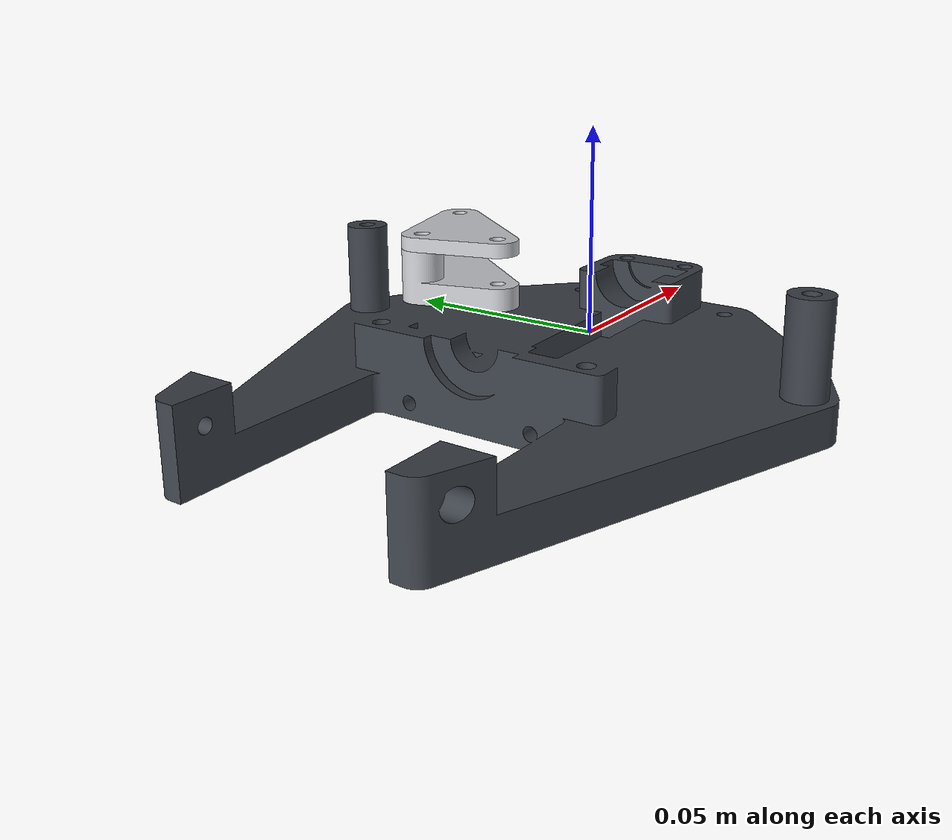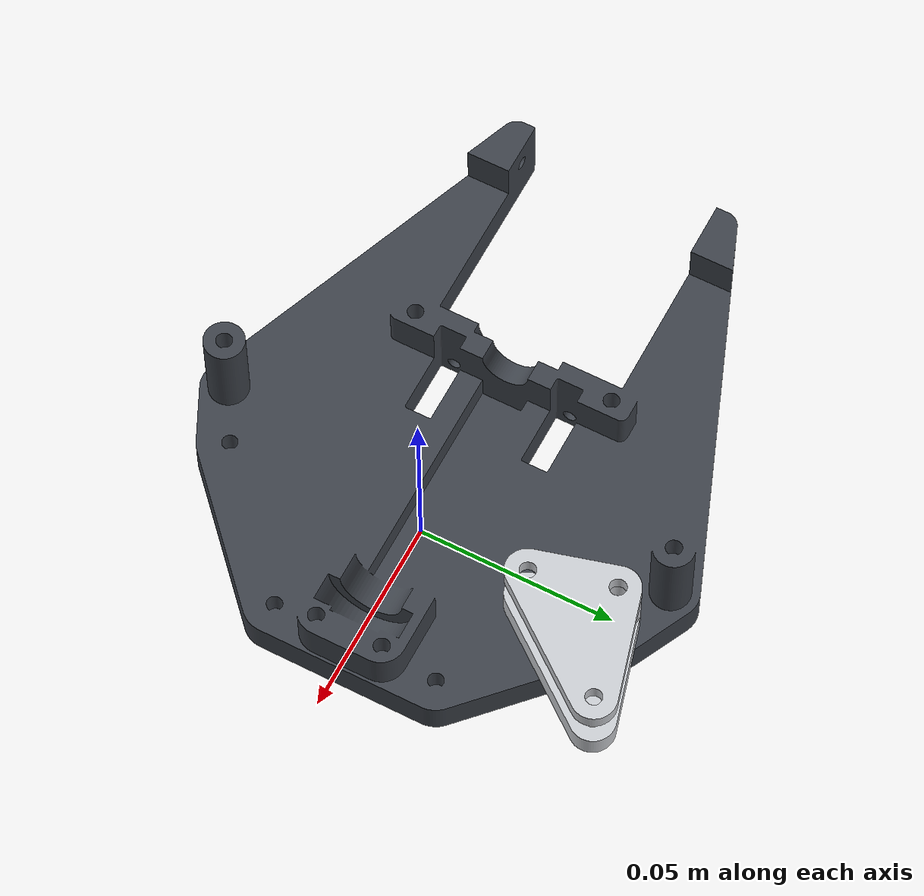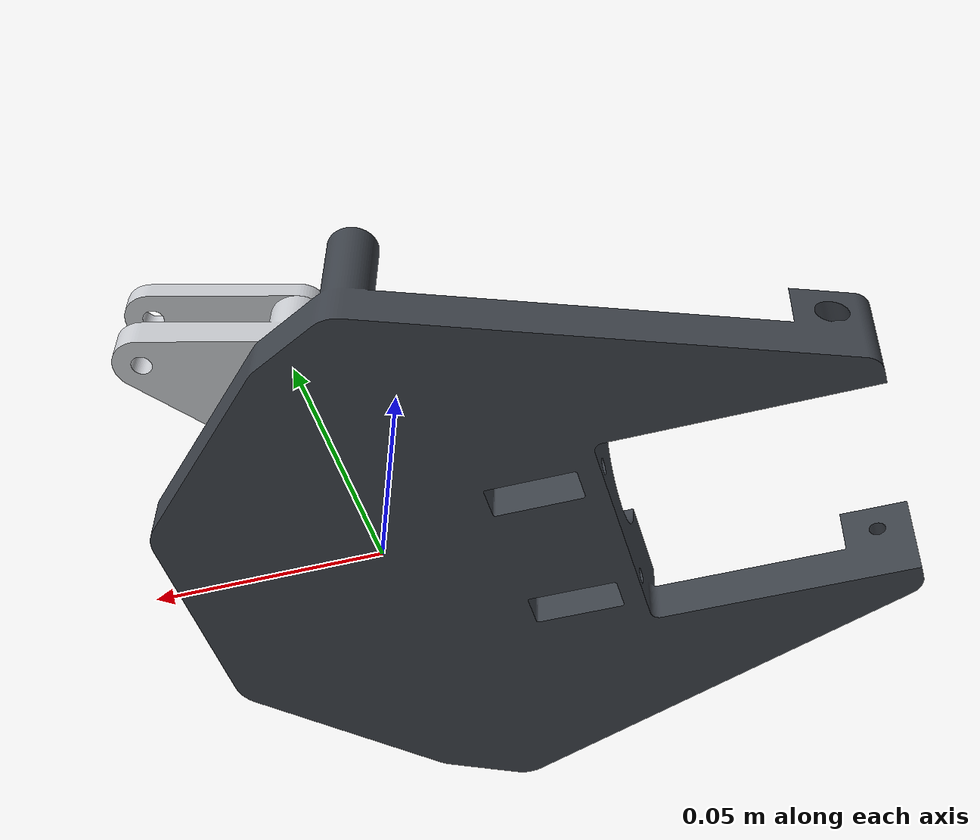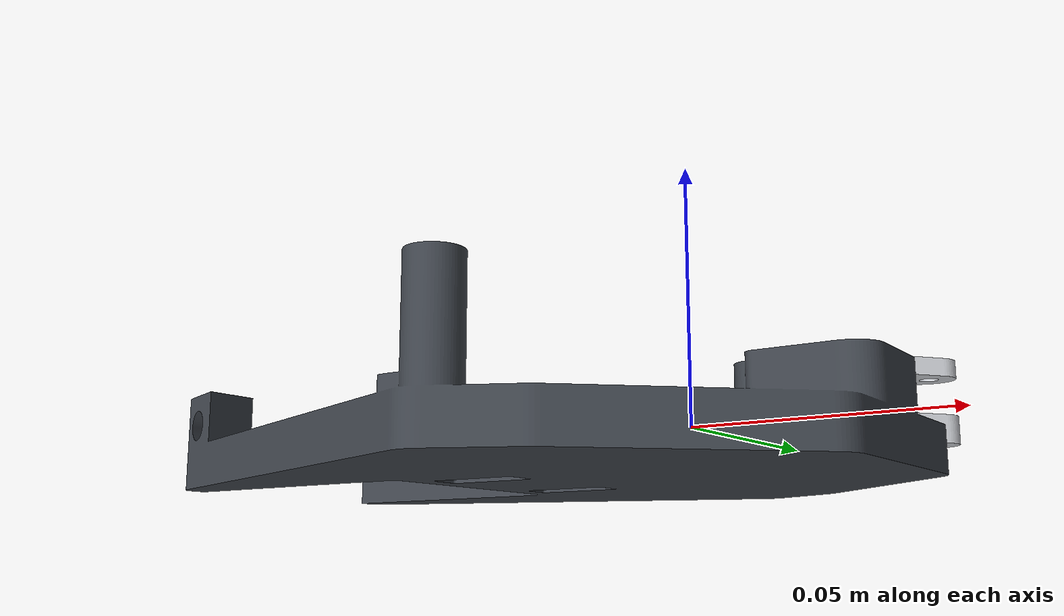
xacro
<?xml version="1.0"?>
<robot name="lead_screw_gripper" xmlns:xacro="http://www.ros.org/wiki/xacro">

  <!-- Numbers from the CAD (gripper_fabrication_rev7/DESIGN_REPORT.md section 3), in metres and radians -->
  <xacro:property name="o1_y" value="0.050970"/>
  <xacro:property name="mesh_dir" value="package://lead_screw_gripper_description/meshes/visual"/>

  <!-- Bell-crank joint limits, measured from the 30 mm pose the meshes were exported in
       (crank angle 15.55 deg): closed at -15.52 deg, fully open (66 mm hard stop) at 65.64 deg -->
  <xacro:property name="crank_lower" value="-0.54234"/>
  <xacro:property name="crank_upper" value="0.87423"/>

  <material name="base_grey">
    <color rgba="0.24 0.26 0.29 1"/>
  </material>
  <material name="crank_grey">
    <color rgba="0.79 0.80 0.82 1"/>
  </material>

  <!-- Fixed body. Its frame is the CAD origin: x = 0 at O1, z = 0 on top of the base plate -->
  <link name="base_link">
    <visual>
      <geometry>
        <mesh filename="${mesh_dir}/base.stl"/>
      </geometry>
      <material name="base_grey"/>
    </visual>
  </link>

  <!-- Upper bell crank: two plates that turn together around O1 -->
  <link name="bell_crank_U">
    <visual>
      <origin xyz="0 ${-o1_y} 0" rpy="0 0 0"/>
      <geometry>
        <mesh filename="${mesh_dir}/bell_crank_lower_u.stl"/>
      </geometry>
      <material name="crank_grey"/>
    </visual>
    <visual>
      <origin xyz="0 ${-o1_y} 0" rpy="0 0 0"/>
      <geometry>
        <mesh filename="${mesh_dir}/bell_crank_upper_u.stl"/>
      </geometry>
      <material name="crank_grey"/>
    </visual>
  </link>

  <joint name="bell_crank_U_joint" type="revolute">
    <parent link="base_link"/>
    <child link="bell_crank_U"/>
    <origin xyz="0 ${o1_y} 0" rpy="0 0 0"/>
    <axis xyz="0 0 1"/>
    <!-- effort and velocity are placeholders until phase 7 -->
    <limit lower="${crank_lower}" upper="${crank_upper}" effort="1.0" velocity="1.0"/>
  </joint>

</robot>
